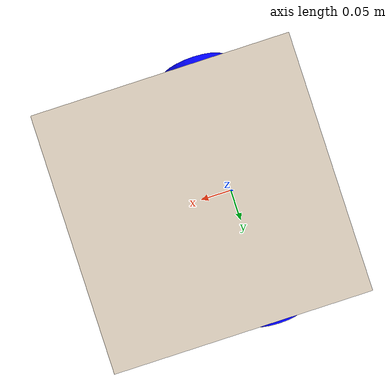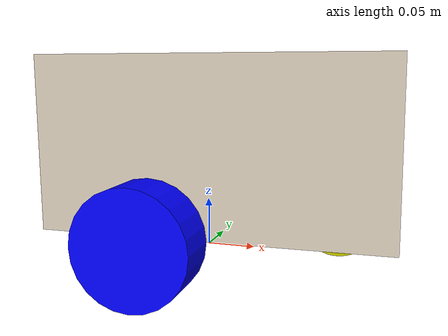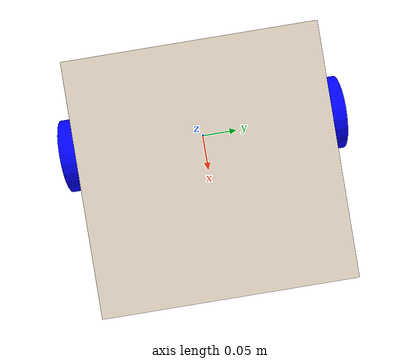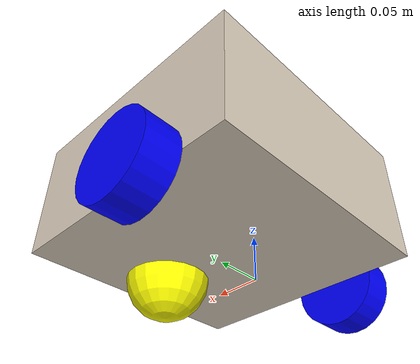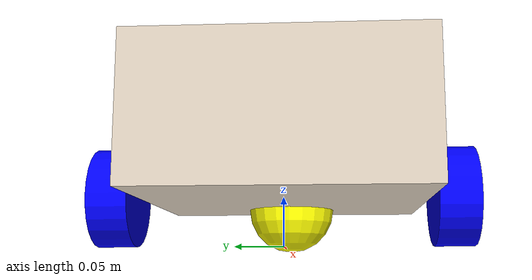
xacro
<?xml version="1.1" encoding="UTF-8"?>
<robot xmlns:xacro="http://www.ros.org/wiki/xacro">

  <xacro:include filename="inertial_macro.xacro" />
  <xacro:include filename="materials.xacro" />
  <xacro:include filename="wheel_component.xacro" />

  <link name="base_footprint" />

  <link name="base_link" />

  <joint name="base_joint" type="fixed">
    <parent link="base_footprint" />
    <child link="base_link" />
    <origin xyz="0 0 0.05" />
  </joint>

  <link name="chassis_link">
    <visual>
      <origin xyz="0.15 0 0.075" />
      <geometry>
        <box size="0.3 0.3 0.15" />
      </geometry>
      <material name="paper" />
    </visual>
    <collision>
      <origin xyz="0.15 0 0.075" />
      <geometry>
        <box size="0.3 0.3 0.15" />
      </geometry>
    </collision>
    <xacro:inertial_box mass="0.5" x="0.3" y="0.3" z="0.15">
      <origin xyz="0.15 0 0.075" rpy="0 0 0" />
    </xacro:inertial_box>
  </link>

  <joint name="chassis_joint" type="fixed">
    <parent link="base_link" />
    <child link="chassis_link" />
    <origin xyz="-0.1 0 0" />
  </joint>

  <xacro:wheel prefix="left" parent="base_link">
    <origin xyz="0 0.17 0" rpy="-${pi/2} 0 0" />
    <axis xyz="0 0 1"/>
  </xacro:wheel>

  <xacro:wheel prefix="right" parent="base_link">
    <origin xyz="0 -0.17 0" rpy="${pi/2} 0 0" />
    <axis xyz="0 0 -1"/>
  </xacro:wheel>

  <link name="caster_wheel_link">
    <visual>
      <geometry>
        <sphere radius="0.05" />
      </geometry>
      <material name="yellow" />
    </visual>
    <collision>
      <geometry>
        <sphere radius="0.05" />
      </geometry>
    </collision>
    <xacro:inertial_sphere mass="0.1" radius="0.05">
      <origin xyz="0 0 0" rpy="0 0 0" />
    </xacro:inertial_sphere>
  </link>

  <joint name="caster_wheel_joint" type="fixed">
    <parent link="base_link" />
    <child link="caster_wheel_link" />
    <origin xyz="0.14 0 0" />
  </joint>

  <gazebo reference="caster_wheel_link">
    <mu1 value="0.001" />
    <mu2 value="0.001" />
  </gazebo>

</robot>

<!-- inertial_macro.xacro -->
<robot xmlns:xacro="http://www.ros.org/wiki/xacro">

  <!-- Specify some standard inertial calculations
  https://en.wikipedia.org/wiki/List_of_moments_of_inertia -->
  <!-- These make use of xacro's mathematical functionality -->

  <xacro:macro name="inertial_sphere" params="mass radius *origin">
    <inertial>
      <xacro:insert_block name="origin" />
      <mass value="${mass}" />
      <inertia ixx="${(2/5) * mass * (radius*radius)}" ixy="0.0" ixz="0.0"
        iyy="${(2/5) * mass * (radius*radius)}" iyz="0.0"
        izz="${(2/5) * mass * (radius*radius)}" />
    </inertial>
  </xacro:macro>

  <xacro:macro name="inertial_box" params="mass x y z *origin">
    <inertial>
      <xacro:insert_block name="origin" />
      <mass value="${mass}" />
      <inertia ixx="${(1/12) * mass * (y*y+z*z)}" ixy="0.0" ixz="0.0"
        iyy="${(1/12) * mass * (x*x+z*z)}" iyz="0.0"
        izz="${(1/12) * mass * (x*x+y*y)}" />
    </inertial>
  </xacro:macro>

  <xacro:macro name="inertial_cylinder" params="mass length radius *origin">
    <inertial>
      <xacro:insert_block name="origin" />
      <mass value="${mass}" />
      <inertia ixx="${(1/12) * mass * (3*radius*radius + length*length)}" ixy="0.0" ixz="0.0"
        iyy="${(1/12) * mass * (3*radius*radius + length*length)}" iyz="0.0"
        izz="${(1/2) * mass * (radius*radius)}" />
    </inertial>
  </xacro:macro>

</robot>

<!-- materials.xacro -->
<robot xmlns:xacro="http://www.ros.org/wiki/xacro">

  <!-- Solid -->
  <material name="white">
    <color rgba="1.0 1.0 1.0 1.0"/>
  </material>

  <material name="Gray">
    <color rgba="0.6 0.6 0.6 1.0"/>
  </material>

  <material name="black">
    <color rgba="0.0 0.0 0.0 1.0"/>
  </material>

  <material name="red">
    <color rgba="1.0 0.0 0.0 1.0"/>
  </material>

  <material name="yellow">
    <color rgba="1.0 1.0 0.0 1.0"/>
  </material>

  <material name="green">
    <color rgba="0.0 1.0 0.0 1.0"/>
  </material>

  <material name="blue">
    <color rgba="0.0 0.0 1.0 1.0"/>
  </material>

  <!-- Exotic -->
  <material name="paper">
    <color rgba="0.85 0.80 0.73 1.0"/>
  </material>

  <material name="Salmon">
    <color rgba="0.9 0.5 0.5 1.0"/>
  </material>

  <material name="Dark purple">
    <color rgba="0.3 0.1 0.4 1.0"/>
  </material>

  <material name="Olive">
    <color rgba="0.5 0.6 0.3 1.0"/>
  </material>

</robot>

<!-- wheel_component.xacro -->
<robot xmlns:xacro="http://www.ros.org/wiki/xacro">

  <xacro:macro name="wheel" params="prefix parent *origin *axis">
    <link name="${prefix}_wheel_link">
      <visual>
        <geometry>
          <cylinder radius="0.05" length="0.04" />
        </geometry>
        <material name="blue" />
      </visual>
      <collision>
        <geometry>
          <cylinder radius="0.05" length="0.04" />
        </geometry>
      </collision>
      <xacro:inertial_cylinder mass="0.1" length="0.04" radius="0.05">
        <origin xyz="0 0 0" rpy="0 0 0" />
      </xacro:inertial_cylinder>
    </link>

    <joint name="${prefix}_wheel_joint" type="continuous">
      <parent link="${parent}" />
      <child link="${prefix}_wheel_link" />
      <xacro:insert_block name="origin" />
      <xacro:insert_block name="axis" />
    </joint>

  </xacro:macro>

</robot>
